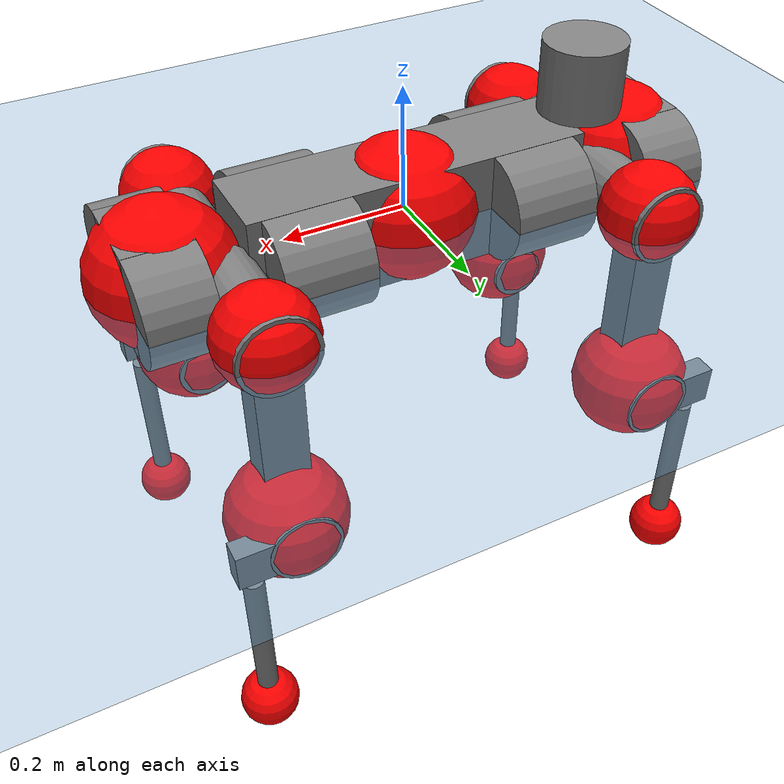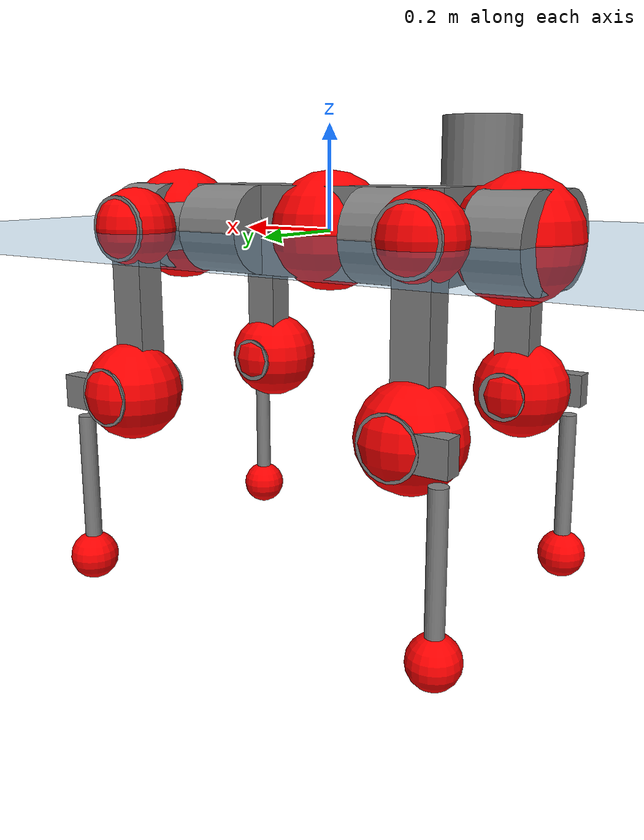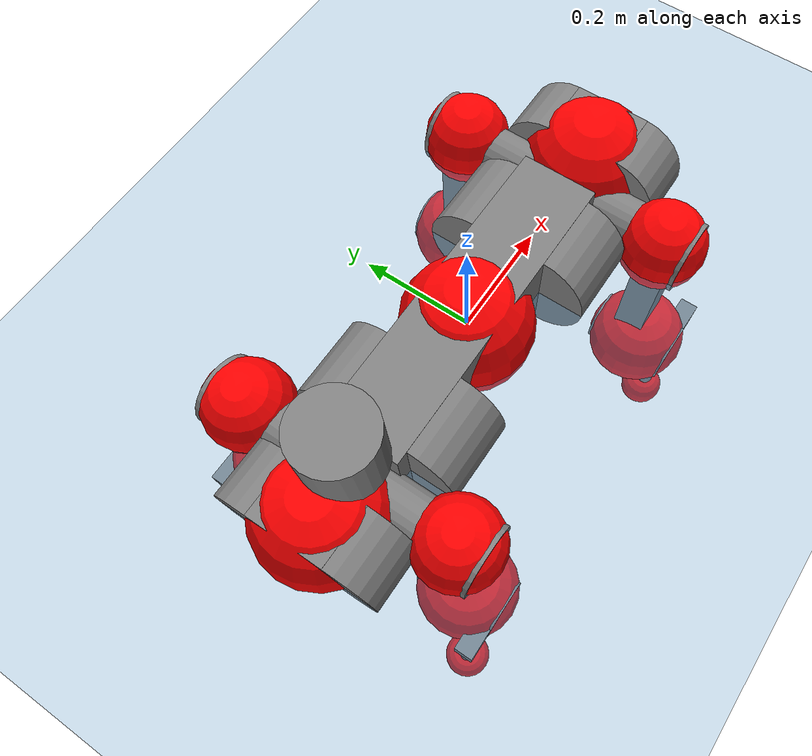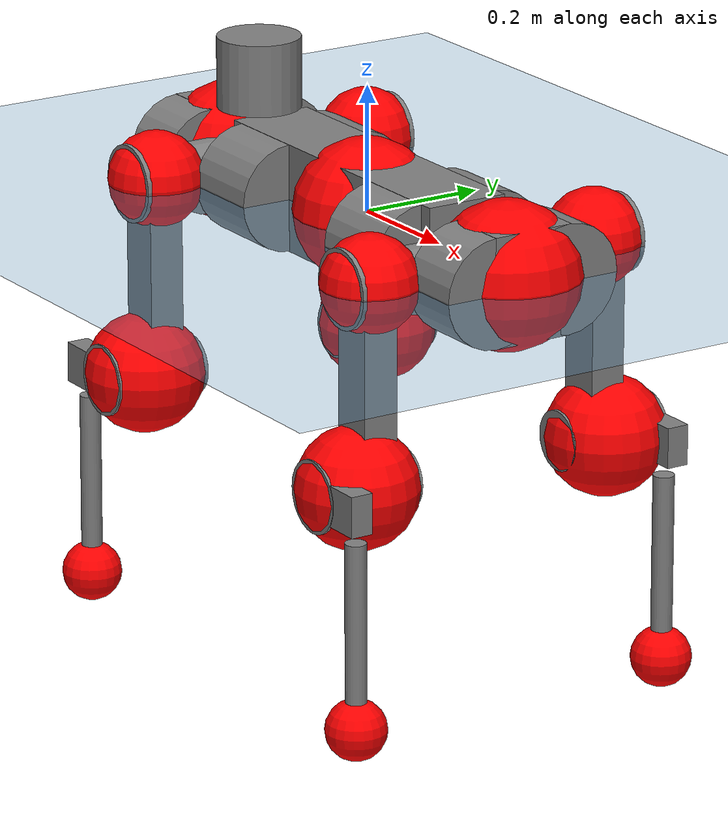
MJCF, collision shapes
<mujoco model="anymal_c">
  <compiler angle="radian" assetdir="assets" balanceinertia="true" inertiafromgeom="false"/>

  <option timestep="0.005" density="1.2" viscosity="2e-05"/>

  <size nkey="1"/>

  <visual>
    <quality shadowsize="8192"/>
    <map shadowclip="0.5"/>
  </visual>

  <default>
    <default class="/">
      <material specular="0" shininess="0.25"/>
      <geom contype="0" conaffinity="0" group="1" solref="-1000 -80"/>
      <site size="0.01 0.005 0.005" group="5"/>
      <general forcelimited="true" forcerange="-80 80" biastype="affine" gainprm="80" biasprm="0 -80 -2"/>
      <default class="anymal_c">
        <joint armature="0.01" damping="0.01" frictionloss="0.1"/>
        <default class="visual">
          <geom type="mesh" group="2"/>
          <default class="visual_zflip"/>
        </default>
        <default class="collision">
          <geom type="cylinder" group="3"/>
          <default class="foot">
            <geom size="0.03 0 0" type="sphere" condim="6" priority="1" friction="0.8 0.02 0.01" solimp="0.015 1 0.03"/>
          </default>
        </default>
      </default>
      <default class="reward_collision_sphere">
        <geom group="5" rgba="1 0 0 1"/>
      </default>
    </default>
  </default>

  <asset>
    <texture type="skybox" colorspace="auto" name="//unnamed_texture_0" builtin="gradient" rgb1="0.95 0.95 0.95" rgb2="0.95 0.95 0.95" width="100" height="600"/>
    <texture type="2d" colorspace="auto" name="texplane" builtin="checker" rgb1="0.345 0.575 0.748" rgb2="0.345 0.575 0.748" markrgb="1 1 1" width="512" height="512"/>
    <texture type="2d" colorspace="linear" name="base" file="base.png"/>
    <texture type="2d" colorspace="linear" name="top_shell" file="top_shell.png"/>
    <texture type="2d" colorspace="linear" name="bottom_shell" file="bottom_shell.png"/>
    <texture type="2d" colorspace="linear" name="remote" file="remote.png"/>
    <texture type="2d" colorspace="linear" name="hatch" file="hatch.png"/>
    <texture type="2d" colorspace="linear" name="handle" file="handle.png"/>
    <texture type="2d" colorspace="linear" name="face" file="face.png"/>
    <texture type="2d" colorspace="linear" name="battery" file="battery.png"/>
    <texture type="2d" colorspace="linear" name="lidar_cage" file="lidar_cage.png"/>
    <texture type="2d" colorspace="linear" name="depth_camera" file="depth_camera.png"/>
    <texture type="2d" colorspace="linear" name="wide_angle_camera" file="wide_angle_camera.png"/>
    <texture type="2d" colorspace="linear" name="lidar" file="lidar.png"/>
    <texture type="2d" colorspace="linear" name="drive" file="drive.png"/>
    <texture type="2d" colorspace="linear" name="hip_l" file="hip_l.png"/>
    <texture type="2d" colorspace="linear" name="shank_l" file="shank_l.png"/>
    <texture type="2d" colorspace="linear" name="foot" file="foot.png"/>
    <texture type="2d" colorspace="linear" name="thigh" file="thigh.png"/>
    <texture type="2d" colorspace="linear" name="shank_r" file="shank_r.png"/>
    <texture type="2d" colorspace="linear" name="hip_r" file="hip_r.png"/>
    <material name="MatPlane" class="/" texture="texplane" texuniform="true" texrepeat="2 2" specular="0.9" shininess="0.5"/>
    <material name="black_plastic" class="/" rgba="0.007 0.007 0.007 1"/>
    <material name="green" class="/" rgba="0.052 0.178 0.033 1"/>
    <material name="red" class="/" rgba="0.178 0.006 0.005 1"/>
    <material name="yellow" class="/" rgba="0.178 0.119 0.006 1"/>
    <material name="lwl" class="/" rgba="0.8 0.8 0.8 1"/>
    <material name="base" class="/" texture="base"/>
    <material name="top_shell" class="/" texture="top_shell"/>
    <material name="bottom_shell" class="/" texture="bottom_shell"/>
    <material name="hip_l" class="/" texture="hip_l"/>
    <material name="thigh" class="/" texture="thigh"/>
    <material name="shank_l" class="/" texture="shank_l"/>
    <material name="foot" class="/" texture="foot"/>
    <material name="hip_r" class="/" texture="hip_r"/>
    <material name="shank" class="/" texture="shank_r"/>
    <material name="hatch" class="/" texture="hatch"/>
    <material name="remote" class="/" texture="remote"/>
    <material name="handle" class="/" texture="handle"/>
    <material name="face" class="/" texture="face"/>
    <material name="depth_camera" class="/" texture="depth_camera"/>
    <material name="wide_angle_camera" class="/" texture="wide_angle_camera"/>
    <material name="battery" class="/" texture="battery"/>
    <material name="lidar_cage" class="/" texture="lidar_cage"/>
    <material name="lidar" class="/" texture="lidar"/>
    <material name="drive" class="/" texture="drive"/>
    <mesh name="base_0" class="/" file="base_0.obj"/>
    <mesh name="base_1" class="/" file="base_1.obj"/>
    <mesh name="base_2" class="/" file="base_2.obj"/>
    <mesh name="base_3" class="/" file="base_3.obj"/>
    <mesh name="base_4" class="/" file="base_4.obj"/>
    <mesh name="base_5" class="/" file="base_5.obj"/>
    <mesh name="top_shell" class="/" file="top_shell.obj"/>
    <mesh name="bottom_shell" class="/" file="bottom_shell.obj"/>
    <mesh name="remote" class="/" file="remote.obj"/>
    <mesh name="handle" class="/" file="handle.obj"/>
    <mesh name="face" class="/" file="face.obj"/>
    <mesh name="wide_angle_camera" class="/" file="wide_angle_camera.obj"/>
    <mesh name="depth_camera" class="/" file="depth_camera.obj"/>
    <mesh name="battery" class="/" file="battery.obj"/>
    <mesh name="lidar_cage" class="/" file="lidar_cage.obj"/>
    <mesh name="lidar" class="/" file="lidar.obj"/>
    <mesh name="drive" class="/" file="drive.obj"/>
    <mesh name="hip_l" class="/" file="hip_l.obj"/>
    <mesh name="thigh" class="/" file="thigh.obj"/>
    <mesh name="shank_l" class="/" file="shank_l.obj"/>
    <mesh name="foot" class="/" file="foot.obj"/>
    <mesh name="hip_r" class="/" file="hip_r.obj"/>
    <mesh name="hatch" class="/" file="hatch.obj"/>
    <mesh name="shank_r" class="/" file="shank_r.obj"/>
  </asset>

  <worldbody>
    <geom name="floor" class="/" size="100 100 0.125" type="plane" group="0" material="MatPlane"/>
    <light name="toplight_shadow" class="/" pos="0 0 5" dir="0.0990148 0.0990148 -0.990148" type="directional" ambient="0.04 0.04 0.04" diffuse="0.55 0.55 0.55" specular="0.12 0.12 0.12"/>
    <light name="toplight_fill" class="/" pos="0 0 5" dir="0.0990148 0.0990148 -0.990148" type="directional" castshadow="false" ambient="0.04 0.04 0.04" diffuse="0.3 0.3 0.3" specular="0.08 0.08 0.08"/>
    <body name="trunk" childclass="anymal_c" pos="-0.00167359 -0.000720312 0.000863549" quat="1 -1.07974e-05 -1.37012e-05 4.24204e-05">
      <inertial pos="0.0100858 0.00498577 0.0554669" quat="0.500321 0.501431 0.492408 0.505747" mass="15.6621" diaginertia="0.293138 0.390822 0.377706"/>
      <joint name="//unnamed_joint_0" type="free" armature="0" damping="0" frictionloss="0"/>
      <geom name="//unnamed_geom_1" class="visual" material="green" mesh="base_0"/>
      <geom name="//unnamed_geom_2" class="visual" material="yellow" mesh="base_1"/>
      <geom name="//unnamed_geom_3" class="visual" material="red" mesh="base_2"/>
      <geom name="//unnamed_geom_4" class="visual" material="black_plastic" mesh="base_3"/>
      <geom name="//unnamed_geom_5" class="visual" material="lwl" mesh="base_4"/>
      <geom name="//unnamed_geom_6" class="visual" material="base" mesh="base_5"/>
      <geom name="trunk_1" class="collision" size="0.277815 0.0670588 0.0862184" type="box"/>
      <geom name="trunk_2" class="collision" size="0.0862184 0.0694537" pos="0.185931 0.0637325 0" quat="0.707107 0 0.707107 0"/>
      <geom name="trunk_3" class="collision" size="0.0862184 0.0694537" pos="-0.185931 0.0637325 0" quat="0.707107 0 0.707107 0"/>
      <geom name="trunk_4" class="collision" size="0.0862184 0.0694537" pos="0.185931 -0.0637325 0" quat="0.707107 0 0.707107 0"/>
      <geom name="trunk_5" class="collision" size="0.0862184 0.0694537" pos="-0.185931 -0.0637325 0" quat="0.707107 0 0.707107 0"/>
      <geom name="//unnamed_geom_12" class="visual" material="top_shell" mesh="top_shell"/>
      <geom name="//unnamed_geom_13" class="visual" material="bottom_shell" mesh="bottom_shell"/>
      <geom name="//unnamed_geom_14" class="visual" material="remote" mesh="remote"/>
      <geom name="//unnamed_geom_15" class="visual" material="handle" mesh="handle"/>
      <geom name="//unnamed_geom_16" class="visual" pos="0.354338 0 0" quat="1 0 0 0" material="face" mesh="face"/>
      <geom name="trunk_6" class="collision" size="0.052689 0.0670588 0.0862184" pos="0.401355 0 0" type="box"/>
      <geom name="//unnamed_geom_18" class="collision" size="0.0862184 0.052689" pos="0.401355 0.0637325 0" quat="0.707107 0 0.707107 0"/>
      <geom name="//unnamed_geom_19" class="collision" size="0.0862184 0.052689" pos="0.401355 -0.0637325 0" quat="0.707107 0 0.707107 0"/>
      <geom name="//unnamed_geom_20" class="visual" pos="0.394655 0 -0.0343006" quat="0.965926 0 0.258819 0" material="depth_camera" mesh="depth_camera"/>
      <geom name="//unnamed_geom_21" class="visual" pos="0.438542 0 0.0165961" material="wide_angle_camera" mesh="wide_angle_camera"/>
      <geom name="//unnamed_geom_22" class="visual_zflip" pos="-0.354338 0 0" quat="0 0 0 1" material="face" mesh="face"/>
      <geom name="trunk_7" class="collision" size="0.052689 0.0670588 0.0862184" pos="-0.401355 0 0" quat="0 0 0 1" type="box"/>
      <geom name="//unnamed_geom_24" class="collision" size="0.0862184 0.052689" pos="-0.401355 -0.0637325 0" quat="0 -0.707107 0 0.707107"/>
      <geom name="//unnamed_geom_25" class="collision" size="0.0862184 0.052689" pos="-0.401355 0.0637325 0" quat="0 -0.707107 0 0.707107"/>
      <geom name="//unnamed_geom_26" class="visual" pos="-0.394655 0 -0.0343006" quat="0 -0.258819 0 0.965926" material="depth_camera" mesh="depth_camera"/>
      <geom name="//unnamed_geom_27" class="visual_zflip" pos="-0.438542 0 0.0165961" quat="0 0 0 1" material="wide_angle_camera" mesh="wide_angle_camera"/>
      <geom name="//unnamed_geom_28" class="visual" material="battery" mesh="battery"/>
      <geom name="//unnamed_geom_29" class="visual" pos="0 0.0703543 0.030277" quat="0.683013 -0.183013 0.183013 0.683013" material="depth_camera" mesh="depth_camera"/>
      <geom name="//unnamed_geom_30" class="visual" pos="0 -0.0703543 0.030277" quat="0.683013 0.183013 0.183013 -0.683013" material="depth_camera" mesh="depth_camera"/>
      <geom name="//unnamed_geom_31" class="visual" pos="-0.311168 0 0.0814841" quat="1 0 0 0" material="lidar_cage" mesh="lidar_cage"/>
      <geom name="trunk_8" class="collision" size="0.0670588 0.057479" pos="-0.311168 0 0.148002"/>
      <geom name="//unnamed_geom_33" class="visual" pos="-0.311168 2.18463e-05 0.157647" quat="0.707107 0 0 -0.707107" material="lidar" mesh="lidar"/>
      <geom name="//unnamed_geom_34" class="visual" pos="0.256372 0.0947586 -3.41834e-09" quat="0.258819 0.965926 0 0" material="drive" mesh="drive"/>
      <geom name="//unnamed_geom_35" class="visual" pos="0.256372 -0.0947586 3.41834e-09" quat="0.258819 -0.965926 0 0" material="drive" mesh="drive"/>
      <geom name="//unnamed_geom_36" class="visual" pos="-0.256372 0.0947586 3.41834e-09" quat="0 0 0.965926 -0.258819" material="drive" mesh="drive"/>
      <geom name="//unnamed_geom_37" class="visual" pos="-0.256372 -0.0947586 -3.41834e-09" quat="0 0 -0.965926 -0.258819" material="drive" mesh="drive"/>
      <geom name="//unnamed_geom_38" class="visual" pos="0.0991634 0 0.0809298" quat="1 0 0 0" material="hatch" mesh="hatch"/>
      <geom name="//unnamed_geom_39" class="reward_collision_sphere" size="0.114958"/>
      <geom name="//unnamed_geom_40" class="reward_collision_sphere" size="0.114958" pos="0.384686 0 0"/>
      <geom name="//unnamed_geom_41" class="reward_collision_sphere" size="0.114958" pos="-0.384686 0 0"/>
      <site name="imu" pos="0.182312 0.00673099 0.0814164" size="0.00957983"/>
      <camera name="track" pos="0 -1.82093 0" quat="0.707107 0.707107 0 0" mode="trackcom"/>
      <camera name="ego_camera" pos="0.384686 0 -0.0443451" quat="-0.5 -0.5 0.5 0.5"/>
      <body name="LF_HIP" pos="0.259962 0.0986306 0.000740644" quat="0.258068 0.966126 -0.000785297 -0.000472262">
        <inertial pos="0.0486556 -0.0104447 -0.0111344" quat="-0.127808 0.707984 -0.136137 0.681095" mass="2.66252" diaginertia="0.00295498 0.00355758 0.00600472"/>
        <joint name="LF_HAA" pos="0 0 0" axis="0.999913 -0.00674152 0.0113036" stiffness="0.0108408" range="-0.717669 0.493347" armature="0.0102879" damping="0" frictionloss="0.107148"/>
        <geom name="//unnamed_geom_42" class="visual" pos="0 -0.000201085 3.30281e-05" quat="0.258819 -0.965926 0 0" material="hip_l" mesh="hip_l"/>
        <geom name="//unnamed_geom_43" class="visual" pos="0.0512059 -0.0628494 -0.0377519" quat="0.183013 -0.683013 0.683013 0.183013" material="drive" mesh="drive"/>
        <geom name="//unnamed_geom_44" class="collision" size="0.0478991 0.0670588" pos="0.0512059 -0.010889 -0.00765507" quat="-0.353553 -0.612372 0.612372 -0.353553"/>
        <body name="LF_THIGH" pos="0.0524743 -0.0727562 -0.0470194" quat="0.185004 -0.683948 0.681835 0.181905">
          <inertial pos="0.0282787 -0.000375582 -0.273436" quat="0.991676 0.00886457 -0.0887056 0.0929082" mass="2.71938" diaginertia="0.0135364 0.0198697 0.00693339"/>
          <joint name="LF_HFE" pos="0 0 0" axis="0.999982 -0.00584204 -0.00140562" stiffness="0.00656937" range="-3.24184 3.09436" armature="0.0088406" damping="0" frictionloss="0.101971"/>
          <geom name="//unnamed_geom_45" class="visual" pos="-0.00110635 -1.74335e-06 0" quat="0.707107 0 0 -0.707107" material="thigh" mesh="thigh"/>
          <geom name="//unnamed_geom_46" class="collision" size="0.0622689 0.0383193" pos="0.0341943 0 0" quat="0.5 0.5 -0.5 -0.5"/>
          <geom name="//unnamed_geom_47" class="collision" size="0.0359243 0.0287395 0.135376" pos="0.0256457 0 -0.156664" quat="0.707107 0 0 -0.707107" type="box"/>
          <geom name="//unnamed_geom_48" class="visual" pos="0.0857422 0 -0.315959" quat="1 0 0 0" material="drive" mesh="drive"/>
          <geom name="//unnamed_geom_49" class="collision" size="0.0478991 0.0670588" pos="0.0259022 0 -0.315959" quat="0.707107 0 0.707107 0"/>
          <geom name="//unnamed_geom_50" class="reward_collision_sphere" size="0.0766386" pos="0.0213714 0 0"/>
          <body name="LF_SHANK" pos="0.086483 -0.0053522 -0.31892" quat="1 -0.000257882 -0.000918378 -0.000255028">
            <inertial pos="0.0048895 -0.0536498 -0.0890401" quat="0.993305 -0.113004 -0.000654329 -0.0239637" mass="0.501566" diaginertia="0.00476251 0.00577317 0.00186925"/>
            <joint name="LF_KFE" pos="0 0 0" axis="0.99991 0.012154 0.00572566" stiffness="0.0238786" range="-3.18417 3.14298" armature="0.010017" damping="0.0212243" frictionloss="0.0978631"/>
            <geom name="//unnamed_geom_51" class="visual" pos="-0.000360758 -0.00192358 0" quat="0.707107 0 0 -0.707107" material="shank_l" mesh="shank_l"/>
            <geom name="LF_kfe_act" class="collision" size="0.057479 0.0191597" pos="0.0170971 0 0" quat="0.5 0.5 -0.5 -0.5"/>
            <geom name="//unnamed_geom_53" class="collision" size="0.055083 0.0323319 0.0182017" pos="0.0170971 -0.0523508 0" quat="0.5 0.5 -0.5 -0.5" type="box"/>
            <geom name="//unnamed_geom_54" class="visual" pos="0.011156 -0.0806952 -0.374683" quat="0.382683 0 0 -0.92388" material="foot" mesh="foot"/>
            <geom name="LF_calf" class="collision" size="0.0167647 0.135317" pos="0.0111559 -0.0800753 -0.187341" quat="0.707107 0 0 -0.707107"/>
            <geom name="LF_foot" class="foot" size="0.031063" pos="0.0111559 -0.0800753 -0.349739" quat="0.707107 0 0 -0.707107"/>
            <geom name="//unnamed_geom_57" class="reward_collision_sphere" size="0.0957983" pos="-0.0427429 0 0"/>
            <geom name="//unnamed_geom_58" class="reward_collision_sphere" size="0.0478991" pos="0.0111559 -0.0800753 -0.349739"/>
            <site name="LF_foot" class="foot" pos="0.0111559 -0.0800753 -0.349739" quat="0.707107 0 0 -0.707107" size="0.00957983"/>
          </body>
        </body>
      </body>
      <body name="RF_HIP" pos="0.262787 -0.0945281 -0.00215997" quat="0.258758 -0.965942 -5.27557e-05 -0.000411105">
        <inertial pos="0.0504785 0.022135 -0.00696337" quat="0.102748 0.683185 0.142495 0.708799" mass="2.44919" diaginertia="0.00288323 0.00292918 0.00590155"/>
        <joint name="RF_HAA" pos="0 0 0" axis="0.999797 0.0039092 0.0197747" stiffness="0.0027055" range="-0.449348 0.737001" armature="0.00908566" damping="0.0239584" frictionloss="0.0989506"/>
        <geom name="//unnamed_geom_59" class="visual" pos="0 0.000201084 3.3028e-05" quat="0.258819 0.965926 0 0" material="hip_r" mesh="hip_r"/>
        <geom name="//unnamed_geom_60" class="visual" pos="0.0512059 0.0628494 -0.0377519" quat="0.183013 0.683013 0.683013 -0.183013" material="drive" mesh="drive"/>
        <geom name="//unnamed_geom_61" class="collision" size="0.0478991 0.0670588" pos="0.0512059 0.010889 -0.00765507" quat="-0.353553 0.612372 0.612372 0.353553"/>
        <body name="RF_THIGH" pos="0.0502896 0.0669645 -0.0418484" quat="0.182869 0.682267 0.684268 -0.181238">
          <inertial pos="0.0201858 -0.0013089 -0.271088" quat="0.993612 -0.00347446 -0.0743558 0.0848165" mass="2.50365" diaginertia="0.0137735 0.0192086 0.00629755"/>
          <joint name="RF_HFE" pos="0 0 0" axis="0.999991 0.00347665 -0.00253458" stiffness="0.0126644" range="-3.12415 3.10017" armature="0.0105072" damping="0.00845063" frictionloss="0.0966895"/>
          <geom name="//unnamed_geom_62" class="visual" pos="-0.00110635 -1.74335e-06 0" quat="0.707107 0 0 -0.707107" material="thigh" mesh="thigh"/>
          <geom name="//unnamed_geom_63" class="collision" size="0.0622689 0.0383193" pos="0.0341943 0 0" quat="0.5 0.5 0.5 0.5"/>
          <geom name="//unnamed_geom_64" class="collision" size="0.0359243 0.0287395 0.135376" pos="0.0256457 0 -0.156664" quat="0.707107 0 0 0.707107" type="box"/>
          <geom name="//unnamed_geom_65" class="visual" pos="0.0857422 0 -0.315959" quat="1 0 0 0" material="drive" mesh="drive"/>
          <geom name="//unnamed_geom_66" class="collision" size="0.0478991 0.0670588" pos="0.0259022 0 -0.315959" quat="0.707107 0 0.707107 0"/>
          <geom name="//unnamed_geom_67" class="reward_collision_sphere" size="0.0766386" pos="0.0213714 0 0"/>
          <body name="RF_SHANK" pos="0.0871648 -0.000135714 -0.314915" quat="1 0.000425268 0.000297064 -0.000405414">
            <inertial pos="0.00826092 0.0555503 -0.0890271" quat="0.992064 0.124868 0.0138862 -0.00485454" mass="0.483928" diaginertia="0.00443608 0.00552086 0.00177685"/>
            <joint name="RF_KFE" pos="0 0 0" axis="0.999995 0.00042993 -0.00301854" stiffness="0.0299137" range="-3.01306 3.17201" armature="0.00749537" damping="0" frictionloss="0.0951746"/>
            <geom name="//unnamed_geom_68" class="visual" pos="-0.000360756 0.00192357 0" quat="0.707107 0 0 0.707107" material="shank" mesh="shank_r"/>
            <geom name="RF_kfe_act" class="collision" size="0.057479 0.0191597" pos="0.0170971 0 0" quat="0.5 0.5 0.5 0.5"/>
            <geom name="//unnamed_geom_70" class="collision" size="0.055083 0.0323319 0.0182017" pos="0.0170971 0.0523508 0" quat="0.5 0.5 0.5 0.5" type="box"/>
            <geom name="//unnamed_geom_71" class="visual" pos="0.0111558 0.0806952 -0.374683" quat="0.382683 0 0 0.92388" material="foot" mesh="foot"/>
            <geom name="RF_calf" class="collision" size="0.0167647 0.135317" pos="0.0111559 0.0800753 -0.187341" quat="0.707107 0 0 0.707107"/>
            <geom name="RF_foot" class="foot" size="0.0323798" pos="0.0111559 0.0800753 -0.349739" quat="0.707107 0 0 0.707107"/>
            <geom name="//unnamed_geom_74" class="reward_collision_sphere" size="0.0957983" pos="-0.0427429 0 0"/>
            <geom name="//unnamed_geom_75" class="reward_collision_sphere" size="0.0478991" pos="0.0111559 0.0800753 -0.349739"/>
            <site name="RF_foot" class="foot" pos="0.0111559 0.0800753 -0.349739" quat="0.707107 0 0 0.707107" size="0.00957983"/>
          </body>
        </body>
      </body>
      <body name="LH_HIP" pos="-0.261554 0.0975848 0.00479925" quat="-0.000269801 0.000401288 0.965928 -0.258812">
        <inertial pos="0.0486736 0.0113025 -0.00243632" quat="0.132539 0.669276 0.143421 0.716892" mass="2.24782" diaginertia="0.00220643 0.00276138 0.00512993"/>
        <joint name="LH_HAA" pos="0 0 0" axis="0.999803 -0.00589401 -0.0189568" range="-0.506707 0.737721" armature="0.00829672" damping="0.0340538" frictionloss="0.0958052"/>
        <geom name="//unnamed_geom_76" class="visual" pos="0 0.000201084 3.3028e-05" quat="-0.258819 -0.965926 0 0" material="hip_r" mesh="hip_r"/>
        <geom name="//unnamed_geom_77" class="visual" pos="0.0512059 0.0628494 -0.0377519" quat="0.183013 0.683013 0.683013 -0.183013" material="drive" mesh="drive"/>
        <geom name="//unnamed_geom_78" class="collision" size="0.0478991 0.0670588" pos="0.0512059 0.010889 -0.00765507" quat="-0.353553 0.612372 0.612372 0.353553"/>
        <body name="LH_THIGH" pos="0.0500524 0.0663658 -0.0466247" quat="0.183184 0.682902 0.683098 -0.182938">
          <inertial pos="0.0342795 0.000944124 -0.265586" quat="0.992768 -0.00434739 -0.0807642 0.0887166" mass="2.78259" diaginertia="0.0156139 0.0186865 0.007309"/>
          <joint name="LH_HFE" pos="0 0 0" axis="0.999973 -0.000742725 -0.00725484" range="-3.12619 3.18537" armature="0.0105943" damping="0.0219429" frictionloss="0.0990712"/>
          <geom name="//unnamed_geom_79" class="visual" pos="-0.00110635 -1.74335e-06 0" quat="0.707107 0 0 -0.707107" material="thigh" mesh="thigh"/>
          <geom name="//unnamed_geom_80" class="collision" size="0.0622689 0.0383193" pos="0.0341943 0 0" quat="0.5 0.5 -0.5 -0.5"/>
          <geom name="//unnamed_geom_81" class="collision" size="0.0359243 0.0287395 0.135376" pos="0.0256457 0 -0.156664" quat="0.707107 0 0 -0.707107" type="box"/>
          <geom name="//unnamed_geom_82" class="visual" pos="0.0857422 0 -0.315959" quat="1 0 0 0" material="drive" mesh="drive"/>
          <geom name="//unnamed_geom_83" class="collision" size="0.0478991 0.0670588" pos="0.0259022 0 -0.315959" quat="0.707107 0 0.707107 0"/>
          <geom name="//unnamed_geom_84" class="reward_collision_sphere" size="0.0766386" pos="0.0213714 0 0"/>
          <body name="LH_SHANK" pos="0.0857069 0.000432643 -0.317444" quat="1 7.72914e-06 -1.45912e-05 2.38341e-06">
            <inertial pos="0.00395239 0.0505746 -0.0904608" quat="0.994015 0.106787 -0.0023404 0.0229062" mass="0.468248" diaginertia="0.00429872 0.00487548 0.0017112"/>
            <joint name="LH_KFE" pos="0 0 0" axis="0.999907 -0.0122686 0.00590639" range="-3.23694 3.19248" armature="0.00669548" damping="0" frictionloss="0.11661"/>
            <geom name="//unnamed_geom_85" class="visual" pos="-0.000360756 0.00192357 0" quat="-0.707107 0 0 -0.707107" material="shank" mesh="shank_r"/>
            <geom name="LH_kfe_act" class="collision" size="0.057479 0.0191597" pos="0.0170971 0 0" quat="0.5 0.5 -0.5 -0.5"/>
            <geom name="//unnamed_geom_87" class="collision" size="0.055083 0.0323319 0.0182017" pos="0.0170971 0.0523508 0" quat="0.5 0.5 -0.5 -0.5" type="box"/>
            <geom name="//unnamed_geom_88" class="visual" pos="0.0111558 0.0806952 -0.374683" quat="-0.382683 0 0 -0.92388" material="foot" mesh="foot"/>
            <geom name="LH_calf" class="collision" size="0.0167647 0.135317" pos="0.0111559 0.0800753 -0.187341" quat="0.707107 0 0 -0.707107"/>
            <geom name="LH_foot" class="foot" size="0.0297697" pos="0.0111559 0.0800753 -0.349739" quat="0.707107 0 0 -0.707107"/>
            <geom name="//unnamed_geom_91" class="reward_collision_sphere" size="0.0957983" pos="-0.0427429 0 0"/>
            <geom name="//unnamed_geom_92" class="reward_collision_sphere" size="0.0478991" pos="0.0111559 0.0800753 -0.349739"/>
            <site name="LH_foot" class="foot" pos="0.0111559 0.0800753 -0.349739" quat="0.707107 0 0 -0.707107" size="0.00957983"/>
          </body>
        </body>
      </body>
      <body name="RH_HIP" pos="-0.264329 -0.0924962 0.000287877" quat="0.000518615 0.000247042 -0.965751 -0.25947">
        <inertial pos="0.0500104 -0.0149621 -0.00255413" quat="-0.0936994 0.708235 -0.114843 0.690242" mass="2.53185" diaginertia="0.00290182 0.00338709 0.00608476"/>
        <joint name="RH_HAA" pos="0 0 0" axis="0.999575 -0.0248245 -0.0152744" stiffness="0.00115595" range="-0.612502 0.472234" armature="0.00937658" damping="0.0136779" frictionloss="0.0959892"/>
        <geom name="//unnamed_geom_93" class="visual" pos="0 -0.000201085 3.30281e-05" quat="-0.258819 0.965926 0 0" material="hip_l" mesh="hip_l"/>
        <geom name="//unnamed_geom_94" class="visual" pos="0.0512059 -0.0628494 -0.0377519" quat="-0.183013 0.683013 -0.683013 -0.183013" material="drive" mesh="drive"/>
        <geom name="//unnamed_geom_95" class="collision" size="0.0478991 0.0670588" pos="0.0512059 -0.010889 -0.00765507" quat="0.353553 0.612372 -0.612372 0.353553"/>
        <body name="RH_THIGH" pos="0.0443038 -0.0653504 -0.0410593" quat="-0.181704 0.684335 -0.681885 -0.183581">
          <inertial pos="0.0281815 -0.00147416 -0.270495" quat="0.993044 -0.00195551 -0.0824023 0.084077" mass="2.88153" diaginertia="0.0147552 0.0186641 0.00697512"/>
          <joint name="RH_HFE" pos="0 0 0" axis="0.999933 -0.00907766 -0.00720397" range="-3.17209 3.1183" armature="0.0085109" damping="0.00329618" frictionloss="0.0979486"/>
          <geom name="//unnamed_geom_96" class="visual" pos="-0.00110635 -1.74335e-06 0" quat="0.707107 0 0 -0.707107" material="thigh" mesh="thigh"/>
          <geom name="//unnamed_geom_97" class="collision" size="0.0622689 0.0383193" pos="0.0341943 0 0" quat="0.5 0.5 0.5 0.5"/>
          <geom name="//unnamed_geom_98" class="collision" size="0.0359243 0.0287395 0.135376" pos="0.0256457 0 -0.156664" quat="0.707107 0 0 0.707107" type="box"/>
          <geom name="//unnamed_geom_99" class="visual" pos="0.0857422 0 -0.315959" quat="1 0 0 0" material="drive" mesh="drive"/>
          <geom name="//unnamed_geom_100" class="collision" size="0.0478991 0.0670588" pos="0.0259022 0 -0.315959" quat="0.707107 0 0.707107 0"/>
          <geom name="//unnamed_geom_101" class="reward_collision_sphere" size="0.0766386" pos="0.0213714 0 0"/>
          <body name="RH_SHANK" pos="0.086742 -0.00404966 -0.315256" quat="0.999995 -0.000945042 -0.00204817 0.00203078">
            <inertial pos="0.000540525 -0.055674 -0.0879228" quat="0.992706 -0.120142 -0.00512892 -0.00862996" mass="0.500157" diaginertia="0.00461847 0.00576997 0.00186918"/>
            <joint name="RH_KFE" pos="0 0 0" axis="0.99986 -0.00456011 0.0161173" stiffness="0.00695405" range="-3.13614 3.02756" armature="0.00936607" damping="0" frictionloss="0.0954806"/>
            <geom name="//unnamed_geom_102" class="visual" pos="-0.000360758 -0.00192358 0" quat="0.707107 0 0 -0.707107" material="shank_l" mesh="shank_l"/>
            <geom name="RH_kfe_act" class="collision" size="0.057479 0.0191597" pos="0.0170971 0 0" quat="0.5 0.5 0.5 0.5"/>
            <geom name="//unnamed_geom_104" class="collision" size="0.055083 0.0323319 0.0182017" pos="0.0170971 -0.0523508 0" quat="0.5 0.5 0.5 0.5" type="box"/>
            <geom name="//unnamed_geom_105" class="visual" pos="0.011156 -0.0806952 -0.374683" quat="0.382683 0 0 -0.92388" material="foot" mesh="foot"/>
            <geom name="RH_calf" class="collision" size="0.0167647 0.135317" pos="0.0111559 -0.0800753 -0.187341" quat="0.707107 0 0 0.707107"/>
            <geom name="RH_foot" class="foot" size="0.0310335" pos="0.0111559 -0.0800753 -0.349739" quat="0.707107 0 0 0.707107"/>
            <geom name="//unnamed_geom_108" class="reward_collision_sphere" size="0.0957983" pos="-0.0427429 0 0"/>
            <geom name="//unnamed_geom_109" class="reward_collision_sphere" size="0.0478991" pos="0.0111559 -0.0800753 -0.349739"/>
            <site name="RH_foot" class="foot" pos="0.0111559 -0.0800753 -0.349739" quat="0.707107 0 0 0.707107" size="0.00957983"/>
          </body>
        </body>
      </body>
    </body>
  </worldbody>

  <contact>
    <pair class="/" geom1="floor" geom2="LF_foot" name="//unnamed_contact_0"/>
    <pair class="/" geom1="floor" geom2="RF_foot" name="//unnamed_contact_1"/>
    <pair class="/" geom1="floor" geom2="LH_foot" name="//unnamed_contact_2"/>
    <pair class="/" geom1="floor" geom2="RH_foot" name="//unnamed_contact_3"/>
  </contact>

  <actuator>
    <general name="LF_HAA" class="/" joint="LF_HAA" forcerange="-87.2538 87.2538" gainprm="78.9215" biasprm="0 -78.9215 -1.93682"/>
    <general name="LF_HFE" class="/" joint="LF_HFE" forcerange="-95.604 95.604" gainprm="78.9215" biasprm="0 -78.9215 -1.93682"/>
    <general name="LF_KFE" class="/" joint="LF_KFE" forcerange="-74.0248 74.0248" gainprm="78.9215" biasprm="0 -78.9215 -1.93682"/>
    <general name="RF_HAA" class="/" joint="RF_HAA" forcerange="-82.4327 82.4327" gainprm="78.9215" biasprm="0 -78.9215 -1.93682"/>
    <general name="RF_HFE" class="/" joint="RF_HFE" forcerange="-68.7557 68.7557" gainprm="78.9215" biasprm="0 -78.9215 -1.93682"/>
    <general name="RF_KFE" class="/" joint="RF_KFE" forcerange="-70.9232 70.9232" gainprm="78.9215" biasprm="0 -78.9215 -1.93682"/>
    <general name="LH_HAA" class="/" joint="LH_HAA" forcerange="-79.4116 79.4116" gainprm="78.9215" biasprm="0 -78.9215 -1.93682"/>
    <general name="LH_HFE" class="/" joint="LH_HFE" forcerange="-85.8198 85.8198" gainprm="78.9215" biasprm="0 -78.9215 -1.93682"/>
    <general name="LH_KFE" class="/" joint="LH_KFE" forcerange="-79.2541 79.2541" gainprm="78.9215" biasprm="0 -78.9215 -1.93682"/>
    <general name="RH_HAA" class="/" joint="RH_HAA" forcerange="-71.8494 71.8494" gainprm="78.9215" biasprm="0 -78.9215 -1.93682"/>
    <general name="RH_HFE" class="/" joint="RH_HFE" forcerange="-62.7379 62.7379" gainprm="78.9215" biasprm="0 -78.9215 -1.93682"/>
    <general name="RH_KFE" class="/" joint="RH_KFE" forcerange="-82.6469 82.6469" gainprm="78.9215" biasprm="0 -78.9215 -1.93682"/>
  </actuator>

  <sensor>
    <gyro site="imu" name="imu_angular_velocity"/>
    <velocimeter site="imu" name="imu_linear_velocity"/>
    <framelinvel objtype="site" objname="LF_foot" name="LF_foot_global_linear_velocity"/>
    <framelinvel objtype="site" objname="RF_foot" name="RF_foot_global_linear_velocity"/>
    <framelinvel objtype="site" objname="LH_foot" name="LH_foot_global_linear_velocity"/>
    <framelinvel objtype="site" objname="RH_foot" name="RH_foot_global_linear_velocity"/>
  </sensor>

  <keyframe>
    <key name="home" qpos="0 0 0.55 1 0 0 0 0 0.4 -0.8 0 -0.4 0.8 0 -0.4 0.8 0 0.4 -0.8"/>
  </keyframe>
</mujoco>
